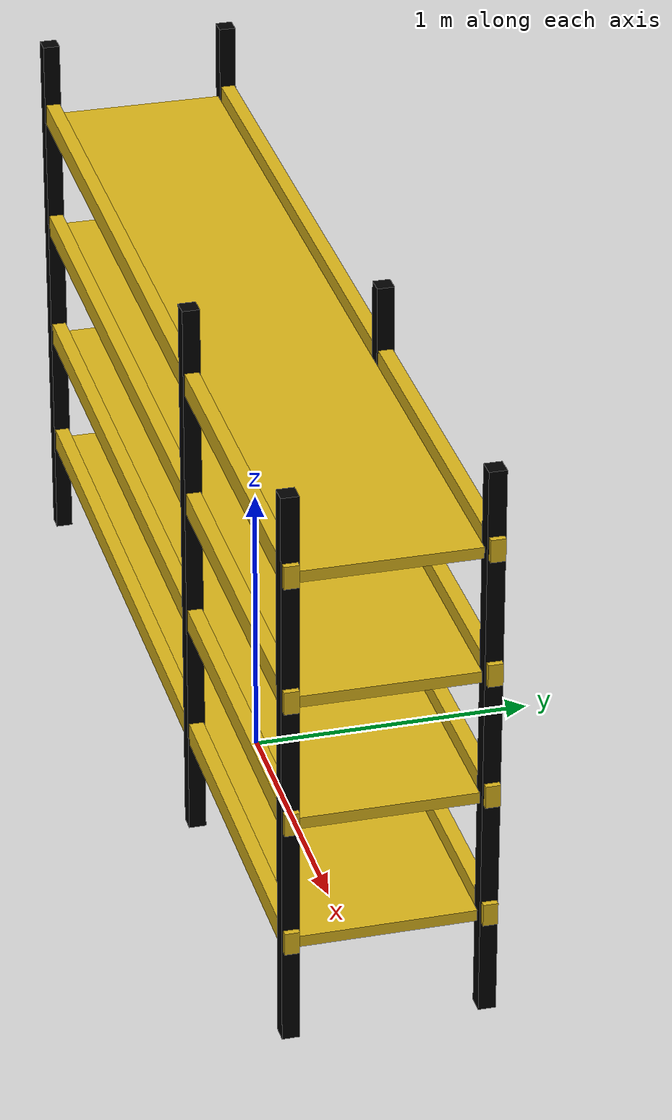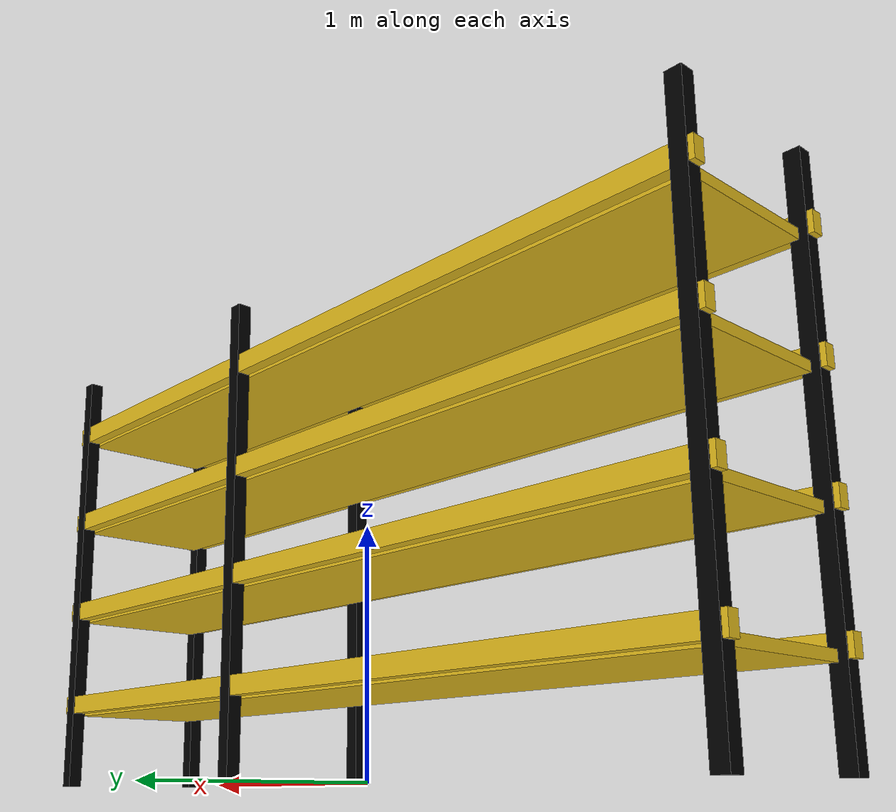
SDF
<?xml version="1.0" ?>
<sdf version="1.7">
  <model name="industrial_empty_shelf">
    <static>true</static>

    <!-- Medidas aproximadas:
         X = 3.5 m largo
         Y = 0.6 m profundidad
         Z = 2.0 m altura
    -->

    <!-- BALDAS AMARILLAS -->
    <link name="shelves">
      <visual name="shelf_1_visual">
        <pose>0 0 0.35 0 0 0</pose>
        <geometry><box><size>3.5 0.6 0.04</size></box></geometry>
        <material>
          <ambient>0.85 0.70 0.10 1</ambient>
          <diffuse>0.85 0.70 0.10 1</diffuse>
          <specular>0.05 0.05 0.05 1</specular>
        </material>
      </visual>
      <collision name="shelf_1_collision">
        <pose>0 0 0.35 0 0 0</pose>
        <geometry><box><size>3.5 0.6 0.04</size></box></geometry>
      </collision>

      <visual name="shelf_2_visual">
        <pose>0 0 0.80 0 0 0</pose>
        <geometry><box><size>3.5 0.6 0.04</size></box></geometry>
        <material>
          <ambient>0.85 0.70 0.10 1</ambient>
          <diffuse>0.85 0.70 0.10 1</diffuse>
          <specular>0.05 0.05 0.05 1</specular>
        </material>
      </visual>
      <collision name="shelf_2_collision">
        <pose>0 0 0.80 0 0 0</pose>
        <geometry><box><size>3.5 0.6 0.04</size></box></geometry>
      </collision>

      <visual name="shelf_3_visual">
        <pose>0 0 1.25 0 0 0</pose>
        <geometry><box><size>3.5 0.6 0.04</size></box></geometry>
        <material>
          <ambient>0.85 0.70 0.10 1</ambient>
          <diffuse>0.85 0.70 0.10 1</diffuse>
          <specular>0.05 0.05 0.05 1</specular>
        </material>
      </visual>
      <collision name="shelf_3_collision">
        <pose>0 0 1.25 0 0 0</pose>
        <geometry><box><size>3.5 0.6 0.04</size></box></geometry>
      </collision>

      <visual name="shelf_4_visual">
        <pose>0 0 1.70 0 0 0</pose>
        <geometry><box><size>3.5 0.6 0.04</size></box></geometry>
        <material>
          <ambient>0.85 0.70 0.10 1</ambient>
          <diffuse>0.85 0.70 0.10 1</diffuse>
          <specular>0.05 0.05 0.05 1</specular>
        </material>
      </visual>
      <collision name="shelf_4_collision">
        <pose>0 0 1.70 0 0 0</pose>
        <geometry><box><size>3.5 0.6 0.04</size></box></geometry>
      </collision>
    </link>

    <!-- LARGUEROS AMARILLOS -->
    <link name="yellow_beams">
      <visual name="front_beam_1">
        <pose>0 -0.33 0.38 0 0 0</pose>
        <geometry><box><size>3.6 0.05 0.08</size></box></geometry>
        <material><ambient>0.85 0.70 0.10 1</ambient><diffuse>0.85 0.70 0.10 1</diffuse><specular>0.05 0.05 0.05 1</specular></material>
      </visual>
      <collision name="front_beam_1_col">
        <pose>0 -0.33 0.38 0 0 0</pose>
        <geometry><box><size>3.6 0.05 0.08</size></box></geometry>
      </collision>

      <visual name="back_beam_1">
        <pose>0 0.33 0.38 0 0 0</pose>
        <geometry><box><size>3.6 0.05 0.08</size></box></geometry>
        <material><ambient>0.85 0.70 0.10 1</ambient><diffuse>0.85 0.70 0.10 1</diffuse><specular>0.05 0.05 0.05 1</specular></material>
      </visual>
      <collision name="back_beam_1_col">
        <pose>0 0.33 0.38 0 0 0</pose>
        <geometry><box><size>3.6 0.05 0.08</size></box></geometry>
      </collision>

      <visual name="front_beam_2">
        <pose>0 -0.33 0.83 0 0 0</pose>
        <geometry><box><size>3.6 0.05 0.08</size></box></geometry>
        <material><ambient>0.85 0.70 0.10 1</ambient><diffuse>0.85 0.70 0.10 1</diffuse><specular>0.05 0.05 0.05 1</specular></material>
      </visual>
      <collision name="front_beam_2_col">
        <pose>0 -0.33 0.83 0 0 0</pose>
        <geometry><box><size>3.6 0.05 0.08</size></box></geometry>
      </collision>

      <visual name="back_beam_2">
        <pose>0 0.33 0.83 0 0 0</pose>
        <geometry><box><size>3.6 0.05 0.08</size></box></geometry>
        <material><ambient>0.85 0.70 0.10 1</ambient><diffuse>0.85 0.70 0.10 1</diffuse><specular>0.05 0.05 0.05 1</specular></material>
      </visual>
      <collision name="back_beam_2_col">
        <pose>0 0.33 0.83 0 0 0</pose>
        <geometry><box><size>3.6 0.05 0.08</size></box></geometry>
      </collision>

      <visual name="front_beam_3">
        <pose>0 -0.33 1.28 0 0 0</pose>
        <geometry><box><size>3.6 0.05 0.08</size></box></geometry>
        <material><ambient>0.85 0.70 0.10 1</ambient><diffuse>0.85 0.70 0.10 1</diffuse><specular>0.05 0.05 0.05 1</specular></material>
      </visual>
      <collision name="front_beam_3_col">
        <pose>0 -0.33 1.28 0 0 0</pose>
        <geometry><box><size>3.6 0.05 0.08</size></box></geometry>
      </collision>

      <visual name="back_beam_3">
        <pose>0 0.33 1.28 0 0 0</pose>
        <geometry><box><size>3.6 0.05 0.08</size></box></geometry>
        <material><ambient>0.85 0.70 0.10 1</ambient><diffuse>0.85 0.70 0.10 1</diffuse><specular>0.05 0.05 0.05 1</specular></material>
      </visual>
      <collision name="back_beam_3_col">
        <pose>0 0.33 1.28 0 0 0</pose>
        <geometry><box><size>3.6 0.05 0.08</size></box></geometry>
      </collision>

      <visual name="front_beam_4">
        <pose>0 -0.33 1.73 0 0 0</pose>
        <geometry><box><size>3.6 0.05 0.08</size></box></geometry>
        <material><ambient>0.85 0.70 0.10 1</ambient><diffuse>0.85 0.70 0.10 1</diffuse><specular>0.05 0.05 0.05 1</specular></material>
      </visual>
      <collision name="front_beam_4_col">
        <pose>0 -0.33 1.73 0 0 0</pose>
        <geometry><box><size>3.6 0.05 0.08</size></box></geometry>
      </collision>

      <visual name="back_beam_4">
        <pose>0 0.33 1.73 0 0 0</pose>
        <geometry><box><size>3.6 0.05 0.08</size></box></geometry>
        <material><ambient>0.85 0.70 0.10 1</ambient><diffuse>0.85 0.70 0.10 1</diffuse><specular>0.05 0.05 0.05 1</specular></material>
      </visual>
      <collision name="back_beam_4_col">
        <pose>0 0.33 1.73 0 0 0</pose>
        <geometry><box><size>3.6 0.05 0.08</size></box></geometry>
      </collision>
    </link>

    <!-- POSTES NEGROS -->
    <link name="black_posts">
      <visual name="post_left_front">
        <pose>-1.75 -0.33 1.0 0 0 0</pose>
        <geometry><box><size>0.06 0.06 2.0</size></box></geometry>
        <material><ambient>0.0 0.0 0.0 1</ambient><diffuse>0.0 0.0 0.0 1</diffuse></material>
      </visual>
      <collision name="post_left_front_col">
        <pose>-1.75 -0.33 1.0 0 0 0</pose>
        <geometry><box><size>0.06 0.06 2.0</size></box></geometry>
      </collision>

      <visual name="post_left_back">
        <pose>-1.75 0.33 1.0 0 0 0</pose>
        <geometry><box><size>0.06 0.06 2.0</size></box></geometry>
        <material><ambient>0.0 0.0 0.0 1</ambient><diffuse>0.0 0.0 0.0 1</diffuse></material>
      </visual>
      <collision name="post_left_back_col">
        <pose>-1.75 0.33 1.0 0 0 0</pose>
        <geometry><box><size>0.06 0.06 2.0</size></box></geometry>
      </collision>

      <visual name="post_center_front">
        <pose>0.45 -0.33 1.0 0 0 0</pose>
        <geometry><box><size>0.06 0.06 2.0</size></box></geometry>
        <material><ambient>0.0 0.0 0.0 1</ambient><diffuse>0.0 0.0 0.0 1</diffuse></material>
      </visual>
      <collision name="post_center_front_col">
        <pose>0.45 -0.33 1.0 0 0 0</pose>
        <geometry><box><size>0.06 0.06 2.0</size></box></geometry>
      </collision>

      <visual name="post_center_back">
        <pose>0.45 0.33 1.0 0 0 0</pose>
        <geometry><box><size>0.06 0.06 2.0</size></box></geometry>
        <material><ambient>0.0 0.0 0.0 1</ambient><diffuse>0.0 0.0 0.0 1</diffuse></material>
      </visual>
      <collision name="post_center_back_col">
        <pose>0.45 0.33 1.0 0 0 0</pose>
        <geometry><box><size>0.06 0.06 2.0</size></box></geometry>
      </collision>

      <visual name="post_right_front">
        <pose>1.75 -0.33 1.0 0 0 0</pose>
        <geometry><box><size>0.06 0.06 2.0</size></box></geometry>
        <material><ambient>0.0 0.0 0.0 1</ambient><diffuse>0.0 0.0 0.0 1</diffuse></material>
      </visual>
      <collision name="post_right_front_col">
        <pose>1.75 -0.33 1.0 0 0 0</pose>
        <geometry><box><size>0.06 0.06 2.0</size></box></geometry>
      </collision>

      <visual name="post_right_back">
        <pose>1.75 0.33 1.0 0 0 0</pose>
        <geometry><box><size>0.06 0.06 2.0</size></box></geometry>
        <material><ambient>0.0 0.0 0.0 1</ambient><diffuse>0.0 0.0 0.0 1</diffuse></material>
      </visual>
      <collision name="post_right_back_col">
        <pose>1.75 0.33 1.0 0 0 0</pose>
        <geometry><box><size>0.06 0.06 2.0</size></box></geometry>
      </collision>
    </link>

  </model>
</sdf>
